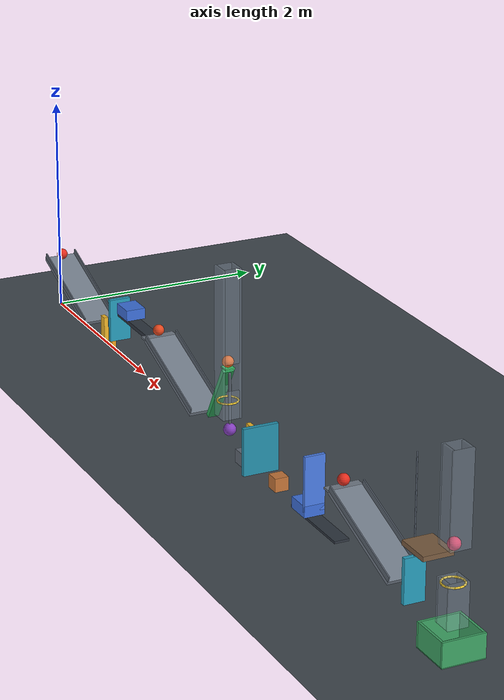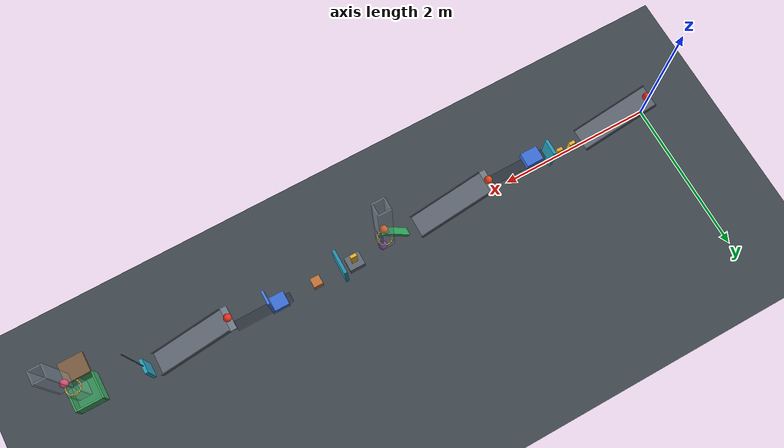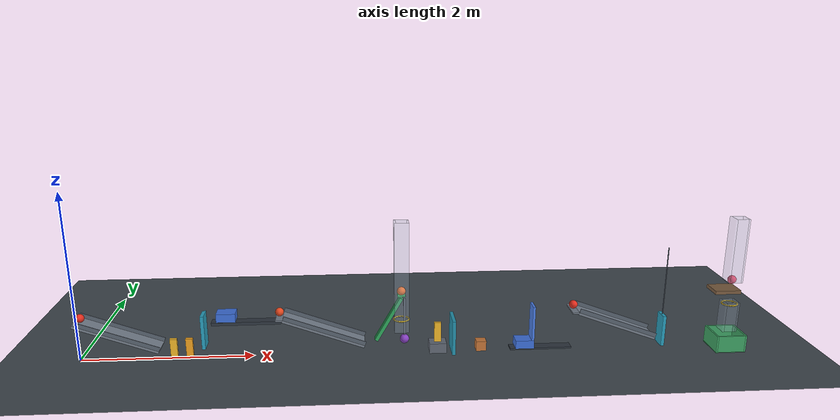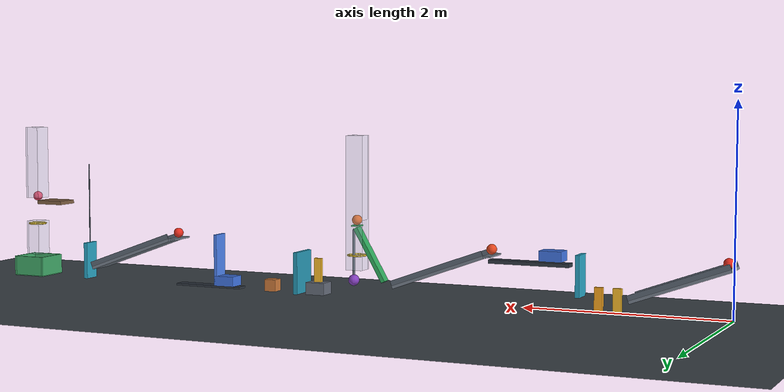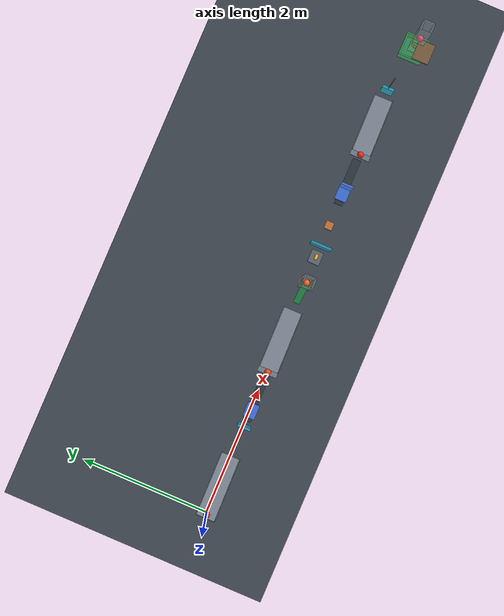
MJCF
<mujoco model="assisted_chain_reaction">
  <compiler angle="degree" autolimits="true" inertiafromgeom="auto"/>
  <option timestep="0.002" gravity="0 0 -9.81" integrator="implicitfast" solver="Newton" iterations="100" cone="elliptic"/>
  <size njmax="3000" nconmax="1000"/>
  <visual>
    <headlight ambient="0.45 0.45 0.45" diffuse="0.7 0.7 0.7" specular="0.2 0.2 0.2"/>
    <map znear="0.01" zfar="40"/>
  </visual>

  <worldbody>
    <light name="main_light" pos="3 -4 7" dir="0 0 -1" directional="true"/>
    <camera name="overview" pos="4 -10 6" xyaxes="1 0 0 0 0.45 0.893"/>
    <geom name="floor" type="plane" size="12 5 0.1" friction="0.70 0.001 0.0001" condim="3" solref="0.006 0.6901" solimp="0.95 0.99 0.001" rgba="0.25 0.28 0.31 1"/>

    <!-- Ramp 1: one-metre sloping surface, low surface at z=0.15. -->
    <body name="ramp1" pos="0 0 0.492020143" quat="0.984807753 0 0.173648178 0">
      <geom name="ramp1_surface" type="box" pos="0.5 0 -0.015" size="0.50 0.15 0.015" friction="0.70 0.001 0.0001" condim="3" solref="0.006 0.6901" solimp="0.95 0.99 0.001" rgba="0.45 0.49 0.54 1"/>
      <geom name="ramp1_left_curb" type="box" pos="0.5 0.145 0.025" size="0.50 0.005 0.025" friction="0.70 0.001 0.0001" condim="3" solref="0.006 0.6901" solimp="0.95 0.99 0.001" rgba="0.35 0.39 0.44 1"/>
      <geom name="ramp1_right_curb" type="box" pos="0.5 -0.145 0.025" size="0.50 0.005 0.025" friction="0.70 0.001 0.0001" condim="3" solref="0.006 0.6901" solimp="0.95 0.99 0.001" rgba="0.35 0.39 0.44 1"/>
    </body>

    <body name="ball1" pos="0.054688715 0 0.525324168">
      <freejoint name="ball1_free"/>
      <geom name="ball1_sphere" type="sphere" size="0.05" mass="0.20" friction="0.70 0.001 0.0001" condim="3" solref="0.006 0.6901" solimp="0.95 0.99 0.001" rgba="0.90 0.18 0.12 1"/>
    </body>

    <body name="domino1" pos="1.079692621 0 0.12">
      <freejoint name="domino1_free"/>
      <geom name="domino1_box" type="box" size="0.04 0.02 0.12" mass="0.25" friction="0.70 0.001 0.0001" condim="3" solref="0.006 0.6901" solimp="0.95 0.99 0.001" rgba="0.95 0.72 0.16 1"/>
    </body>

    <body name="domino2" pos="1.259692621 0 0.12">
      <freejoint name="domino2_free"/>
      <geom name="domino2_box" type="box" size="0.04 0.02 0.12" mass="0.25" friction="0.70 0.001 0.0001" condim="3" solref="0.006 0.6901" solimp="0.95 0.99 0.001" rgba="0.95 0.64 0.12 1"/>
    </body>

    <!-- Flap 1 rotates clockwise when viewed from above.
         Its lower half receives domino2; its upper half strikes cart1. -->
    <body name="flap1" pos="1.439692621 -0.10 0.34">
      <joint name="flap1_hinge" type="hinge" axis="0 0 -1" range="0 65" damping="0.04" armature="0.0001" solreflimit="0.004 1"/>
      <geom name="flap1_panel" type="box" pos="0 0.10 0" size="0.02 0.10 0.20" mass="0.30" friction="0.70 0.001 0.0001" condim="3" solref="0.006 0.6901" solimp="0.95 0.99 0.001" rgba="0.15 0.62 0.74 1"/>
    </body>

    <body name="cart1" pos="1.709692621 0 0.512020143">
      <joint name="cart1_slide" type="slide" axis="1 0 0" range="0 0.53" damping="0.20" solreflimit="0.004 1"/>
      <geom name="cart1_box" type="box" size="0.11 0.09 0.05" mass="0.50" friction="0.70 0.001 0.0001" condim="3" solref="0.006 0.6901" solimp="0.95 0.99 0.001" rgba="0.24 0.44 0.86 1"/>
    </body>

    <body name="cart1_track" pos="1.934692621 0 0.43">
      <geom name="cart1_track_beam" type="box" size="0.40 0.06 0.018" contype="0" conaffinity="0" friction="0.70 0.001 0.0001" rgba="0.18 0.21 0.25 1"/>
    </body>

    <!-- Horizontal high-end landings keep balls 2 and 4 at rest
         until their carts push them onto the inclined surfaces. -->
    <body name="ramp2" pos="2.359692621 0 0.492020143" quat="0.984807753 0 0.173648178 0">
      <geom name="ramp2_surface" type="box" pos="0.5 0 -0.015" size="0.50 0.15 0.015" friction="0.70 0.001 0.0001" condim="3" solref="0.006 0.6901" solimp="0.95 0.99 0.001" rgba="0.45 0.49 0.54 1"/>
      <geom name="ramp2_high_landing" type="box" pos="-0.034851544 0 -0.021198347" quat="0.984807753 0 -0.173648178 0" size="0.04 0.15 0.008" friction="0.70 0.001 0.0001" condim="3" solref="0.006 0.6901" solimp="0.95 0.99 0.001" rgba="0.45 0.49 0.54 1"/>
      <geom name="ramp2_left_curb" type="box" pos="0.5 0.145 0.025" size="0.50 0.005 0.025" friction="0.70 0.001 0.0001" condim="3" solref="0.006 0.6901" solimp="0.95 0.99 0.001" rgba="0.35 0.39 0.44 1"/>
      <geom name="ramp2_right_curb" type="box" pos="0.5 -0.145 0.025" size="0.50 0.005 0.025" friction="0.70 0.001 0.0001" condim="3" solref="0.006 0.6901" solimp="0.95 0.99 0.001" rgba="0.35 0.39 0.44 1"/>
    </body>

    <body name="ball2" pos="2.319692621 0 0.542020143">
      <freejoint name="ball2_free"/>
      <geom name="ball2_sphere" type="sphere" size="0.05" mass="0.20" friction="0.70 0.001 0.0001" condim="3" solref="0.006 0.6901" solimp="0.95 0.99 0.001" rgba="0.90 0.28 0.12 1"/>
    </body>

    <body name="lever1" pos="3.586705750 0 0.425" quat="0.866025404 0 -0.5 0">
      <inertial pos="0 0 0" mass="0.50" diaginertia="0.000483333 0.015066667 0.015416667"/>
      <joint name="lever1_hinge" type="hinge" axis="0 -1 0" range="0 45" damping="0.04" armature="0.0001" solreflimit="0.004 1"/>
      <geom name="lever1_beam" type="box" size="0.30 0.05 0.02" friction="0.70 0.001 0.0001" condim="3" solref="0.006 0.6901" solimp="0.95 0.99 0.001" rgba="0.18 0.66 0.36 1"/>
      <geom name="lever1_launch_pad" type="box" pos="0.319052559 0 0.011" quat="0.866025404 0 0.5 0" size="0.045 0.045 0.006" friction="0.70 0.001 0.0001" condim="3" solref="0.006 0.6901" solimp="0.95 0.99 0.001" rgba="0.24 0.76 0.42 1"/>
    </body>

    <body name="ball3" pos="3.736705750 0 0.762807621">
      <freejoint name="ball3_free"/>
      <geom name="ball3_sphere" type="sphere" size="0.05" mass="0.20" friction="0.70 0.001 0.0001" condim="3" solref="0.006 0.6901" solimp="0.95 0.99 0.001" rgba="0.96 0.42 0.13 1"/>
    </body>

    <!-- Guides leave clearance for the lever's sweep. -->
    <body name="ball3_guides" pos="3.736705750 0 0">
      <geom name="ball3_guides_y_positive" type="box" pos="0 0.075 0.935" size="0.085 0.010 0.665" friction="0.70 0.001 0.0001" condim="3" solref="0.006 0.6901" solimp="0.95 0.99 0.001" rgba="0.70 0.78 0.86 0.28"/>
      <geom name="ball3_guides_y_negative" type="box" pos="0 -0.075 0.935" size="0.085 0.010 0.665" friction="0.70 0.001 0.0001" condim="3" solref="0.006 0.6901" solimp="0.95 0.99 0.001" rgba="0.70 0.78 0.86 0.28"/>
      <geom name="ball3_guides_x_positive_upper" type="box" pos="0.075 0 1.183903811" size="0.010 0.065 0.416096189" friction="0.70 0.001 0.0001" condim="3" solref="0.006 0.6901" solimp="0.95 0.99 0.001" rgba="0.70 0.78 0.86 0.28"/>
      <geom name="ball3_guides_x_negative_upper" type="box" pos="-0.075 0 1.183903811" size="0.010 0.065 0.416096189" friction="0.70 0.001 0.0001" condim="3" solref="0.006 0.6901" solimp="0.95 0.99 0.001" rgba="0.70 0.78 0.86 0.28"/>
      <geom name="ball3_guides_x_positive_lower" type="box" pos="0.075 0 0.395" size="0.010 0.065 0.125" friction="0.70 0.001 0.0001" condim="3" solref="0.006 0.6901" solimp="0.95 0.99 0.001" rgba="0.70 0.78 0.86 0.28"/>
      <geom name="ball3_guides_x_negative_lower" type="box" pos="-0.075 0 0.395" size="0.010 0.065 0.125" friction="0.70 0.001 0.0001" condim="3" solref="0.006 0.6901" solimp="0.95 0.99 0.001" rgba="0.70 0.78 0.86 0.28"/>
    </body>

    <body name="ring1" pos="3.736705750 0 0.412807621">
      <geom name="ring1_segment01" type="capsule" fromto="0.089725 0 0 0.082894 0.034336 0" size="0.008" friction="0.70 0.001 0.0001" condim="3" solref="0.006 0.6901" solimp="0.95 0.99 0.001" rgba="0.95 0.80 0.20 1"/>
      <geom name="ring1_segment02" type="capsule" fromto="0.082894 0.034336 0 0.063446 0.063446 0" size="0.008" friction="0.70 0.001 0.0001" condim="3" solref="0.006 0.6901" solimp="0.95 0.99 0.001" rgba="0.95 0.80 0.20 1"/>
      <geom name="ring1_segment03" type="capsule" fromto="0.063446 0.063446 0 0.034336 0.082894 0" size="0.008" friction="0.70 0.001 0.0001" condim="3" solref="0.006 0.6901" solimp="0.95 0.99 0.001" rgba="0.95 0.80 0.20 1"/>
      <geom name="ring1_segment04" type="capsule" fromto="0.034336 0.082894 0 0 0.089725 0" size="0.008" friction="0.70 0.001 0.0001" condim="3" solref="0.006 0.6901" solimp="0.95 0.99 0.001" rgba="0.95 0.80 0.20 1"/>
      <geom name="ring1_segment05" type="capsule" fromto="0 0.089725 0 -0.034336 0.082894 0" size="0.008" friction="0.70 0.001 0.0001" condim="3" solref="0.006 0.6901" solimp="0.95 0.99 0.001" rgba="0.95 0.80 0.20 1"/>
      <geom name="ring1_segment06" type="capsule" fromto="-0.034336 0.082894 0 -0.063446 0.063446 0" size="0.008" friction="0.70 0.001 0.0001" condim="3" solref="0.006 0.6901" solimp="0.95 0.99 0.001" rgba="0.95 0.80 0.20 1"/>
      <geom name="ring1_segment07" type="capsule" fromto="-0.063446 0.063446 0 -0.082894 0.034336 0" size="0.008" friction="0.70 0.001 0.0001" condim="3" solref="0.006 0.6901" solimp="0.95 0.99 0.001" rgba="0.95 0.80 0.20 1"/>
      <geom name="ring1_segment08" type="capsule" fromto="-0.082894 0.034336 0 -0.089725 0 0" size="0.008" friction="0.70 0.001 0.0001" condim="3" solref="0.006 0.6901" solimp="0.95 0.99 0.001" rgba="0.95 0.80 0.20 1"/>
      <geom name="ring1_segment09" type="capsule" fromto="-0.089725 0 0 -0.082894 -0.034336 0" size="0.008" friction="0.70 0.001 0.0001" condim="3" solref="0.006 0.6901" solimp="0.95 0.99 0.001" rgba="0.95 0.80 0.20 1"/>
      <geom name="ring1_segment10" type="capsule" fromto="-0.082894 -0.034336 0 -0.063446 -0.063446 0" size="0.008" friction="0.70 0.001 0.0001" condim="3" solref="0.006 0.6901" solimp="0.95 0.99 0.001" rgba="0.95 0.80 0.20 1"/>
      <geom name="ring1_segment11" type="capsule" fromto="-0.063446 -0.063446 0 -0.034336 -0.082894 0" size="0.008" friction="0.70 0.001 0.0001" condim="3" solref="0.006 0.6901" solimp="0.95 0.99 0.001" rgba="0.95 0.80 0.20 1"/>
      <geom name="ring1_segment12" type="capsule" fromto="-0.034336 -0.082894 0 0 -0.089725 0" size="0.008" friction="0.70 0.001 0.0001" condim="3" solref="0.006 0.6901" solimp="0.95 0.99 0.001" rgba="0.95 0.80 0.20 1"/>
      <geom name="ring1_segment13" type="capsule" fromto="0 -0.089725 0 0.034336 -0.082894 0" size="0.008" friction="0.70 0.001 0.0001" condim="3" solref="0.006 0.6901" solimp="0.95 0.99 0.001" rgba="0.95 0.80 0.20 1"/>
      <geom name="ring1_segment14" type="capsule" fromto="0.034336 -0.082894 0 0.063446 -0.063446 0" size="0.008" friction="0.70 0.001 0.0001" condim="3" solref="0.006 0.6901" solimp="0.95 0.99 0.001" rgba="0.95 0.80 0.20 1"/>
      <geom name="ring1_segment15" type="capsule" fromto="0.063446 -0.063446 0 0.082894 -0.034336 0" size="0.008" friction="0.70 0.001 0.0001" condim="3" solref="0.006 0.6901" solimp="0.95 0.99 0.001" rgba="0.95 0.80 0.20 1"/>
      <geom name="ring1_segment16" type="capsule" fromto="0.082894 -0.034336 0 0.089725 0 0" size="0.008" friction="0.70 0.001 0.0001" condim="3" solref="0.006 0.6901" solimp="0.95 0.99 0.001" rgba="0.95 0.80 0.20 1"/>
    </body>

    <!-- The bob is offset 0.035 m from the falling-ball line so that
         the downward impact supplies a clockwise moment. -->
    <body name="pendulum1" pos="3.771705750 0 0.662807621">
      <joint name="pendulum1_hinge" type="hinge" axis="0 -1 0" range="0 40" damping="0.04" armature="0.0001" solreflimit="0.004 1"/>
      <geom name="pendulum1_rod" type="capsule" fromto="0 0 0 0 0 -0.445" size="0.012" mass="0.05" friction="0.70 0.001 0.0001" condim="3" solref="0.006 0.6901" solimp="0.95 0.99 0.001" rgba="0.34 0.37 0.42 1"/>
      <geom name="pendulum1_bob" type="sphere" pos="0 0 -0.50" size="0.055" mass="0.30" friction="0.70 0.001 0.0001" condim="3" solref="0.006 0.6901" solimp="0.95 0.99 0.001" rgba="0.52 0.25 0.75 1"/>
    </body>

    <body name="domino3_support" pos="4.165305750 0 0.06">
      <geom name="domino3_support_box" type="box" size="0.10 0.09 0.06" friction="0.70 0.001 0.0001" condim="3" solref="0.006 0.6901" solimp="0.95 0.99 0.001" rgba="0.38 0.41 0.46 1"/>
    </body>

    <body name="domino3" pos="4.165305750 0 0.24">
      <freejoint name="domino3_free"/>
      <geom name="domino3_box" type="box" size="0.04 0.02 0.12" mass="0.25" friction="0.70 0.001 0.0001" condim="3" solref="0.006 0.6901" solimp="0.95 0.99 0.001" rgba="0.95 0.72 0.16 1"/>
    </body>

    <body name="door1" pos="4.345305750 -0.16 0.213">
      <joint name="door1_hinge" type="hinge" axis="0 0 -1" range="0 70" damping="0.04" armature="0.0001" solreflimit="0.004 1"/>
      <geom name="door1_panel" type="box" pos="0 0.16 0" size="0.02 0.16 0.21" mass="0.45" friction="0.70 0.001 0.0001" condim="3" solref="0.006 0.6901" solimp="0.95 0.99 0.001" rgba="0.14 0.57 0.68 1"/>
    </body>

    <body name="block1" pos="4.685305750 0 0.06">
      <freejoint name="block1_free"/>
      <geom name="block1_cube" type="box" size="0.06 0.06 0.06" mass="0.35" friction="0.70 0.001 0.0001" condim="3" solref="0.006 0.6901" solimp="0.95 0.99 0.001" rgba="0.77 0.46 0.22 1"/>
    </body>

    <!-- The carriage itself has the requested dimensions and mass.
         Its rigid, massless mast reaches ball4's elevated starting landing. -->
    <body name="cart2" pos="5.205305750 0 0.075">
      <inertial pos="0 0 0" mass="0.50" diaginertia="0.001766667 0.002433333 0.003366667"/>
      <joint name="cart2_slide" type="slide" axis="1 0 0" range="0 0.50" damping="0.20" solreflimit="0.004 1"/>
      <geom name="cart2_box" type="box" size="0.11 0.09 0.05" friction="0.70 0.001 0.0001" condim="3" solref="0.006 0.6901" solimp="0.95 0.99 0.001" rgba="0.24 0.44 0.86 1"/>
      <geom name="cart2_pusher_mast" type="box" pos="0.095 0 0.235" size="0.015 0.09 0.24" friction="0.70 0.001 0.0001" condim="3" solref="0.006 0.6901" solimp="0.95 0.99 0.001" rgba="0.29 0.49 0.90 1"/>
    </body>

    <body name="cart2_track" pos="5.405305750 0 0.012">
      <geom name="cart2_track_beam" type="box" size="0.37 0.065 0.010" contype="0" conaffinity="0" friction="0.70 0.001 0.0001" rgba="0.18 0.21 0.25 1"/>
    </body>

    <body name="ramp3" pos="5.825305750 0 0.492020143" quat="0.984807753 0 0.173648178 0">
      <geom name="ramp3_surface" type="box" pos="0.5 0 -0.015" size="0.50 0.15 0.015" friction="0.70 0.001 0.0001" condim="3" solref="0.006 0.6901" solimp="0.95 0.99 0.001" rgba="0.45 0.49 0.54 1"/>
      <geom name="ramp3_high_landing" type="box" pos="-0.034851544 0 -0.021198347" quat="0.984807753 0 -0.173648178 0" size="0.04 0.15 0.008" friction="0.70 0.001 0.0001" condim="3" solref="0.006 0.6901" solimp="0.95 0.99 0.001" rgba="0.45 0.49 0.54 1"/>
      <geom name="ramp3_left_curb" type="box" pos="0.5 0.145 0.025" size="0.50 0.005 0.025" friction="0.70 0.001 0.0001" condim="3" solref="0.006 0.6901" solimp="0.95 0.99 0.001" rgba="0.35 0.39 0.44 1"/>
      <geom name="ramp3_right_curb" type="box" pos="0.5 -0.145 0.025" size="0.50 0.005 0.025" friction="0.70 0.001 0.0001" condim="3" solref="0.006 0.6901" solimp="0.95 0.99 0.001" rgba="0.35 0.39 0.44 1"/>
    </body>

    <body name="ball4" pos="5.785305750 0 0.542020143">
      <freejoint name="ball4_free"/>
      <geom name="ball4_sphere" type="sphere" size="0.05" mass="0.20" friction="0.70 0.001 0.0001" condim="3" solref="0.006 0.6901" solimp="0.95 0.99 0.001" rgba="0.90 0.18 0.12 1"/>
    </body>

    <body name="flap2" pos="6.884998371 0 1.22">
      <joint name="flap2_hinge" type="hinge" axis="0 -1 0" range="0 60" damping="0.04" armature="0.0001" solreflimit="0.004 1"/>
      <geom name="flap2_panel" type="box" pos="0 0 -1.02" size="0.02 0.09 0.19" mass="0.28" friction="0.70 0.001 0.0001" condim="3" solref="0.006 0.6901" solimp="0.95 0.99 0.001" rgba="0.15 0.62 0.74 1"/>
      <geom name="flap2_carrier" type="capsule" fromto="0 0 0 0 0 -0.83" size="0.006" density="0" contype="0" conaffinity="0" friction="0.70 0.001 0.0001" rgba="0.31 0.35 0.40 1"/>
    </body>

    <body name="shelf1" pos="7.488998371 -0.245 0.78">
      <geom name="shelf1_slab" type="box" size="0.15 0.125 0.02" friction="0.70 0.001 0.0001" condim="3" solref="0.006 0.6901" solimp="0.95 0.99 0.001" rgba="0.48 0.36 0.25 1"/>
    </body>

    <body name="ball5" pos="7.634998371 -0.121 0.85">
      <freejoint name="ball5_free"/>
      <geom name="ball5_sphere" type="sphere" size="0.05" mass="0.20" friction="0.70 0.001 0.0001" condim="3" solref="0.006 0.6901" solimp="0.95 0.99 0.001" rgba="0.92 0.23 0.38 1"/>
    </body>

    <!-- Upper and lower guide sections leave an opening for flap2. -->
    <body name="ball5_guides" pos="7.641998371 -0.121 0">
      <geom name="ball5_guides_upper_x_positive" type="box" pos="0.075 0 1.2175" size="0.010 0.085 0.3825" friction="0.70 0.001 0.0001" condim="3" solref="0.006 0.6901" solimp="0.95 0.99 0.001" rgba="0.70 0.78 0.86 0.28"/>
      <geom name="ball5_guides_upper_x_negative" type="box" pos="-0.075 0 1.2175" size="0.010 0.085 0.3825" friction="0.70 0.001 0.0001" condim="3" solref="0.006 0.6901" solimp="0.95 0.99 0.001" rgba="0.70 0.78 0.86 0.28"/>
      <geom name="ball5_guides_upper_y_positive" type="box" pos="0 0.075 1.2175" size="0.065 0.010 0.3825" friction="0.70 0.001 0.0001" condim="3" solref="0.006 0.6901" solimp="0.95 0.99 0.001" rgba="0.70 0.78 0.86 0.28"/>
      <geom name="ball5_guides_upper_y_negative" type="box" pos="0 -0.075 1.2175" size="0.065 0.010 0.3825" friction="0.70 0.001 0.0001" condim="3" solref="0.006 0.6901" solimp="0.95 0.99 0.001" rgba="0.70 0.78 0.86 0.28"/>
      <geom name="ball5_guides_lower_x_positive" type="box" pos="0.075 0 0.40" size="0.010 0.085 0.18" friction="0.70 0.001 0.0001" condim="3" solref="0.006 0.6901" solimp="0.95 0.99 0.001" rgba="0.70 0.78 0.86 0.28"/>
      <geom name="ball5_guides_lower_x_negative" type="box" pos="-0.075 0 0.40" size="0.010 0.085 0.18" friction="0.70 0.001 0.0001" condim="3" solref="0.006 0.6901" solimp="0.95 0.99 0.001" rgba="0.70 0.78 0.86 0.28"/>
      <geom name="ball5_guides_lower_y_positive" type="box" pos="0 0.075 0.40" size="0.065 0.010 0.18" friction="0.70 0.001 0.0001" condim="3" solref="0.006 0.6901" solimp="0.95 0.99 0.001" rgba="0.70 0.78 0.86 0.28"/>
      <geom name="ball5_guides_lower_y_negative" type="box" pos="0 -0.075 0.40" size="0.065 0.010 0.18" friction="0.70 0.001 0.0001" condim="3" solref="0.006 0.6901" solimp="0.95 0.99 0.001" rgba="0.70 0.78 0.86 0.28"/>
    </body>

    <body name="ring2" pos="7.641998371 -0.121 0.55">
      <geom name="ring2_segment01" type="capsule" fromto="0.089725 0 0 0.082894 0.034336 0" size="0.008" friction="0.70 0.001 0.0001" condim="3" solref="0.006 0.6901" solimp="0.95 0.99 0.001" rgba="0.95 0.80 0.20 1"/>
      <geom name="ring2_segment02" type="capsule" fromto="0.082894 0.034336 0 0.063446 0.063446 0" size="0.008" friction="0.70 0.001 0.0001" condim="3" solref="0.006 0.6901" solimp="0.95 0.99 0.001" rgba="0.95 0.80 0.20 1"/>
      <geom name="ring2_segment03" type="capsule" fromto="0.063446 0.063446 0 0.034336 0.082894 0" size="0.008" friction="0.70 0.001 0.0001" condim="3" solref="0.006 0.6901" solimp="0.95 0.99 0.001" rgba="0.95 0.80 0.20 1"/>
      <geom name="ring2_segment04" type="capsule" fromto="0.034336 0.082894 0 0 0.089725 0" size="0.008" friction="0.70 0.001 0.0001" condim="3" solref="0.006 0.6901" solimp="0.95 0.99 0.001" rgba="0.95 0.80 0.20 1"/>
      <geom name="ring2_segment05" type="capsule" fromto="0 0.089725 0 -0.034336 0.082894 0" size="0.008" friction="0.70 0.001 0.0001" condim="3" solref="0.006 0.6901" solimp="0.95 0.99 0.001" rgba="0.95 0.80 0.20 1"/>
      <geom name="ring2_segment06" type="capsule" fromto="-0.034336 0.082894 0 -0.063446 0.063446 0" size="0.008" friction="0.70 0.001 0.0001" condim="3" solref="0.006 0.6901" solimp="0.95 0.99 0.001" rgba="0.95 0.80 0.20 1"/>
      <geom name="ring2_segment07" type="capsule" fromto="-0.063446 0.063446 0 -0.082894 0.034336 0" size="0.008" friction="0.70 0.001 0.0001" condim="3" solref="0.006 0.6901" solimp="0.95 0.99 0.001" rgba="0.95 0.80 0.20 1"/>
      <geom name="ring2_segment08" type="capsule" fromto="-0.082894 0.034336 0 -0.089725 0 0" size="0.008" friction="0.70 0.001 0.0001" condim="3" solref="0.006 0.6901" solimp="0.95 0.99 0.001" rgba="0.95 0.80 0.20 1"/>
      <geom name="ring2_segment09" type="capsule" fromto="-0.089725 0 0 -0.082894 -0.034336 0" size="0.008" friction="0.70 0.001 0.0001" condim="3" solref="0.006 0.6901" solimp="0.95 0.99 0.001" rgba="0.95 0.80 0.20 1"/>
      <geom name="ring2_segment10" type="capsule" fromto="-0.082894 -0.034336 0 -0.063446 -0.063446 0" size="0.008" friction="0.70 0.001 0.0001" condim="3" solref="0.006 0.6901" solimp="0.95 0.99 0.001" rgba="0.95 0.80 0.20 1"/>
      <geom name="ring2_segment11" type="capsule" fromto="-0.063446 -0.063446 0 -0.034336 -0.082894 0" size="0.008" friction="0.70 0.001 0.0001" condim="3" solref="0.006 0.6901" solimp="0.95 0.99 0.001" rgba="0.95 0.80 0.20 1"/>
      <geom name="ring2_segment12" type="capsule" fromto="-0.034336 -0.082894 0 0 -0.089725 0" size="0.008" friction="0.70 0.001 0.0001" condim="3" solref="0.006 0.6901" solimp="0.95 0.99 0.001" rgba="0.95 0.80 0.20 1"/>
      <geom name="ring2_segment13" type="capsule" fromto="0 -0.089725 0 0.034336 -0.082894 0" size="0.008" friction="0.70 0.001 0.0001" condim="3" solref="0.006 0.6901" solimp="0.95 0.99 0.001" rgba="0.95 0.80 0.20 1"/>
      <geom name="ring2_segment14" type="capsule" fromto="0.034336 -0.082894 0 0.063446 -0.063446 0" size="0.008" friction="0.70 0.001 0.0001" condim="3" solref="0.006 0.6901" solimp="0.95 0.99 0.001" rgba="0.95 0.80 0.20 1"/>
      <geom name="ring2_segment15" type="capsule" fromto="0.063446 -0.063446 0 0.082894 -0.034336 0" size="0.008" friction="0.70 0.001 0.0001" condim="3" solref="0.006 0.6901" solimp="0.95 0.99 0.001" rgba="0.95 0.80 0.20 1"/>
      <geom name="ring2_segment16" type="capsule" fromto="0.082894 -0.034336 0 0.089725 0 0" size="0.008" friction="0.70 0.001 0.0001" condim="3" solref="0.006 0.6901" solimp="0.95 0.99 0.001" rgba="0.95 0.80 0.20 1"/>
    </body>

    <!-- Inner footprint 0.32 x 0.32; walls 0.20 high and 0.02 thick.
         The base top is flush with the floor at z=0. -->
    <body name="bin1" pos="7.641998371 -0.121 0">
      <geom name="bin1_base" type="box" pos="0 0 -0.01" size="0.18 0.18 0.01" friction="0.70 0.001 0.0001" condim="3" solref="0.006 0.6901" solimp="0.95 0.99 0.001" rgba="0.20 0.55 0.33 1"/>
      <geom name="bin1_wall_x_positive" type="box" pos="0.17 0 0.10" size="0.01 0.18 0.10" friction="0.70 0.001 0.0001" condim="3" solref="0.006 0.6901" solimp="0.95 0.99 0.001" rgba="0.24 0.64 0.39 1"/>
      <geom name="bin1_wall_x_negative" type="box" pos="-0.17 0 0.10" size="0.01 0.18 0.10" friction="0.70 0.001 0.0001" condim="3" solref="0.006 0.6901" solimp="0.95 0.99 0.001" rgba="0.24 0.64 0.39 1"/>
      <geom name="bin1_wall_y_positive" type="box" pos="0 0.17 0.10" size="0.16 0.01 0.10" friction="0.70 0.001 0.0001" condim="3" solref="0.006 0.6901" solimp="0.95 0.99 0.001" rgba="0.24 0.64 0.39 1"/>
      <geom name="bin1_wall_y_negative" type="box" pos="0 -0.17 0.10" size="0.16 0.01 0.10" friction="0.70 0.001 0.0001" condim="3" solref="0.006 0.6901" solimp="0.95 0.99 0.001" rgba="0.24 0.64 0.39 1"/>
    </body>
  </worldbody>

  <actuator>
    <general name="flap1_impact_assist" joint="flap1_hinge" gaintype="fixed" gainprm="0" biastype="affine" biasprm="0 3 0"/>
    <general name="lever1_balance_and_assist" joint="lever1_hinge" gaintype="fixed" gainprm="0" biastype="affine" biasprm="0.2943 1 0"/>
    <general name="pendulum1_impact_assist" joint="pendulum1_hinge" gaintype="fixed" gainprm="0" biastype="affine" biasprm="0 3 0"/>
    <general name="door1_impact_assist" joint="door1_hinge" gaintype="fixed" gainprm="0" biastype="affine" biasprm="0 12 0"/>
    <general name="flap2_impact_assist" joint="flap2_hinge" gaintype="fixed" gainprm="0" biastype="affine" biasprm="0 8 0"/>
  </actuator>

  <keyframe>
    <key name="start" time="0" ctrl="0 0 0 0 0"/>
  </keyframe>
</mujoco>
